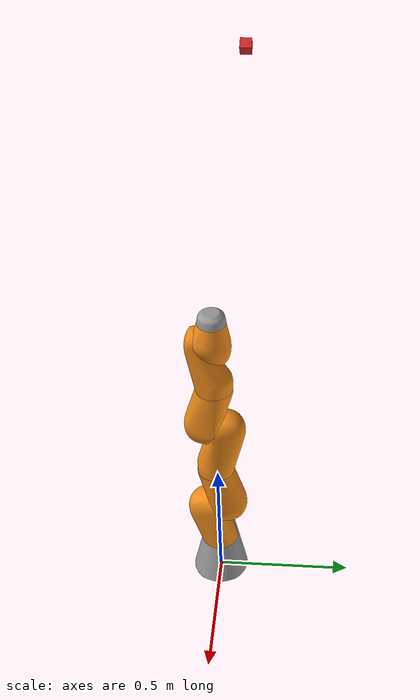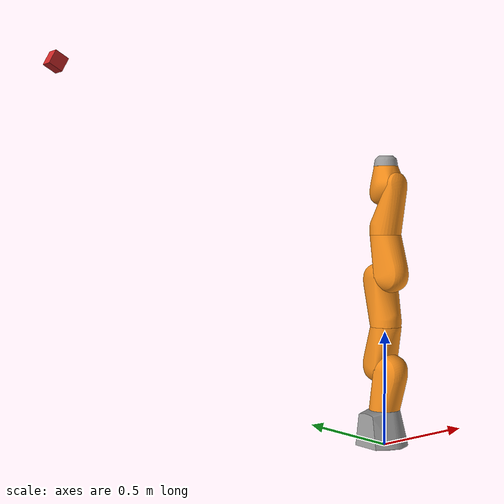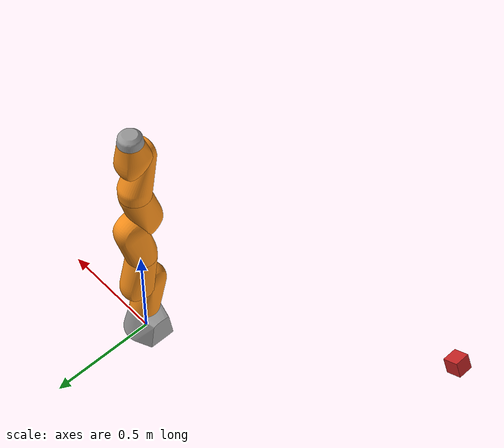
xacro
<?xml version="1.0"?>
<robot name="iiwa7" xmlns:xacro="http://www.ros.org/wiki/xacro">
  <!-- Import Rviz colors -->
  <xacro:include filename="$(find iiwa_description)/urdf/materials.xacro" />
  <!--Import the lbr iiwa macro -->
  <xacro:include filename="$(find iiwa_description)/urdf/iiwa7_cvx.xacro"/>

  <xacro:arg name="hardware_interface" default="PositionJointInterface"/>
  <xacro:arg name="robot_name" default="iiwa"/>

  <!-- Fix to world just for testing -->
  <link name="world"/>

  <!--iiwa-->
  <xacro:iiwa7 hardware_interface="$(arg hardware_interface)" robot_name="$(arg robot_name)" parent="world">
    <origin xyz="0 0 0.0" rpy="0 0 0" />
  </xacro:iiwa7>

</robot>

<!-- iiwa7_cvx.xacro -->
<robot xmlns:xacro="http://www.ros.org/wiki/xacro">

  <!-- Import all Gazebo-customization elements, including Gazebo colors -->
  <xacro:include filename="$(find iiwa_description)/urdf/iiwa.gazebo.xacro" />
  <!-- Import Transmissions -->
  <xacro:include filename="$(find iiwa_description)/urdf/iiwa.transmission.xacro" />
  <!-- Include Utilities -->
  <xacro:include filename="$(find iiwa_description)/urdf/utilities.xacro" />

  <!-- some constants -->
  <xacro:property name="safety_controller_k_pos" value="100" />
  <xacro:property name="safety_controller_k_vel" value="2" />
  <xacro:property name="joint_damping" value="0.5" />
  <xacro:property name="max_effort" value="300"/>
  <xacro:property name="max_velocity" value="10"/>

  <xacro:macro name="iiwa7" params="parent hardware_interface robot_name *origin">

    <!--joint between {parent} and link_0-->
    <joint name="${parent}_${robot_name}_joint" type="fixed">
      <xacro:insert_block name="origin"/>
      <parent link="${parent}"/>
      <child link="${robot_name}_link_0"/>
    </joint>

    <link name="${robot_name}_link_0">
      <inertial>
	<origin xyz="-0.1 0 0.07" rpy="0 0 0"/>
	<mass value="5"/>
	<inertia ixx="0.05"  ixy="0"  ixz="0" iyy="0.06" iyz="0" izz="0.03" />
      </inertial>

      <visual>
	<origin xyz="0 0 0" rpy="0 0 0"/>
	<geometry>
	  <mesh filename="package://iiwa_description/meshes/iiwa7/visual/link_0.stl"/>
	</geometry>
	<material name="Grey"/>
      </visual>

      <collision>
	<origin xyz="0 0 0" rpy="0 0 0"/>
	<geometry>
	  <mesh filename="package://iiwa_description/meshes/iiwa7/collision/link_0_cvx.stl"/>
	</geometry>
	<material name="Grey"/>
      </collision>

      <self_collision_checking>
	<origin xyz="0 0 0" rpy="0 0 0"/>
	<geometry>
	  <capsule radius="0.15" length="0.25"/>
	</geometry>
      </self_collision_checking>

    </link>

    <!-- joint between link_0 and link_1 -->
    <joint name="${robot_name}_joint_1" type="revolute">
      <parent link="${robot_name}_link_0"/>
      <child link="${robot_name}_link_1"/>
      <origin xyz="0 0 0.15" rpy="0 0 0"/>
      <axis xyz="0 0 1"/>
      <limit lower="${-170 * PI / 180}" upper="${170 * PI / 180}"
	     effort="${max_effort}" velocity="${max_velocity}" />
      <safety_controller soft_lower_limit="${-168 * PI / 180}"
			 soft_upper_limit="${168 * PI / 180}"
			 k_position="${safety_controller_k_pos}"
			 k_velocity="${safety_controller_k_vel}"/>
      <dynamics damping="${joint_damping}"/>
    </joint>

    <link name="${robot_name}_link_1">
      <inertial>
	<origin xyz="0 -0.03 0.12" rpy="0 0 0"/>
	<mass value="4"/>
	<inertia ixx="0.1"  ixy="0"  ixz="0" iyy="0.09" iyz="0" izz="0.02" />
      </inertial>
      <visual>
	<origin xyz="0 0 0.0075" rpy="0 0 0"/>
	<geometry>
	  <mesh filename="package://iiwa_description/meshes/iiwa7/visual/link_1.stl"/>
	</geometry>
	<material name="Orange"/>
      </visual>
      <collision>
	<origin xyz="0 0 0.0075" rpy="0 0 0"/>
	<geometry>
	  <mesh filename="package://iiwa_description/meshes/iiwa7/collision/link_1_cvx.stl"/>
	</geometry>
	<material name="Orange"/>
      </collision>
    </link>

    <joint name="${robot_name}_joint_2" type="revolute">
      <parent link="${robot_name}_link_1"/>
      <child link="${robot_name}_link_2"/>
      <origin xyz="0 0 0.19" rpy="${PI / 2}   0 ${PI}"/>
      <axis xyz="0 0 1"/>
      <limit lower="${-120 * PI / 180}" upper="${120 * PI / 180}"
	     effort="${max_effort}" velocity="${max_velocity}" />
      <safety_controller soft_lower_limit="${-118 * PI / 180}"
			 soft_upper_limit="${118 * PI / 180}"
			 k_position="${safety_controller_k_pos}"
			 k_velocity="${safety_controller_k_vel}"/>
      <dynamics damping="${joint_damping}"/>
    </joint>

    <link name="${robot_name}_link_2">
      <inertial>
	<origin xyz="0.0003 0.059 0.042" rpy="0 0 0"/>
	<mass value="4"/>
	<inertia ixx="0.05"  ixy="0"  ixz="0" iyy="0.018" iyz="0" izz="0.044" />
      </inertial>
      <visual>
	<origin xyz="0 0 -0.0060" rpy="0 0 0"/>
	<geometry>
	  <mesh filename="package://iiwa_description/meshes/iiwa7/visual/link_2.stl"/>
	</geometry>
	<material name="Orange"/>
      </visual>

      <collision>
	<origin xyz="0 0 -0.0060" rpy="0 0 0"/>
	<geometry>
	  <mesh filename="package://iiwa_description/meshes/iiwa7/collision/link_2_cvx.stl"/>
	</geometry>
	<material name="Orange"/>
      </collision>
    </link>

    <joint name="${robot_name}_joint_3" type="revolute">
      <parent link="${robot_name}_link_2"/>
      <child link="${robot_name}_link_3"/>
      <origin xyz="0 0.21 0" rpy="${PI / 2} 0 ${PI}"/>
      <axis xyz="0 0 1"/>
      <limit lower="${-170 * PI / 180}" upper="${170 * PI / 180}"
	     effort="${max_effort}" velocity="${max_velocity}" />
      <safety_controller soft_lower_limit="${-168 * PI / 180}"
			 soft_upper_limit="${168 * PI / 180}"
			 k_position="${safety_controller_k_pos}"
			 k_velocity="${safety_controller_k_vel}"/>
      <dynamics damping="${joint_damping}"/>
    </joint>

    <link name="${robot_name}_link_3">
      <inertial>
	<origin xyz="0 0.03 0.13" rpy="0 0 0"/>
	<mass value="3"/>
	<inertia ixx="0.08"  ixy="0"  ixz="0" iyy="0.075" iyz="0" izz="0.01" />
      </inertial>

      <visual>
	<origin xyz="0 -0.005 -0.026" rpy="0 0 0"/>
	<geometry>
	  <mesh filename="package://iiwa_description/meshes/iiwa7/visual/link_3.stl"/>
	</geometry>
	<material name="Orange"/>
      </visual>

      <collision>
	<origin xyz="0 -0.005 -0.026" rpy="0 0 0"/>
	<geometry>
	  <mesh filename="package://iiwa_description/meshes/iiwa7/collision/link_3_cvx.stl"/>
	</geometry>
	<material name="Orange"/>
      </collision>

    </link>

    <joint name="${robot_name}_joint_4" type="revolute">
      <parent link="${robot_name}_link_3"/>
      <child link="${robot_name}_link_4"/>
      <origin xyz="0 0 0.19" rpy="${PI / 2} 0 0"/>
      <axis xyz="0 0 1"/>
      <limit lower="${-120 * PI / 180}" upper="${120 * PI / 180}"
	     effort="${max_effort}" velocity="${max_velocity}" />
      <safety_controller soft_lower_limit="${-118 * PI / 180}"
			 soft_upper_limit="${118 * PI / 180}"
			 k_position="${safety_controller_k_pos}"
			 k_velocity="${safety_controller_k_vel}"/>
      <dynamics damping="${joint_damping}"/>
    </joint>

    <link name="${robot_name}_link_4">
      <inertial>
	<origin xyz="0 0.067 0.034" rpy="0 0 0"/>
	<mass value="2.7"/>
	<inertia ixx="0.03"  ixy="0"  ixz="0" iyy="0.01" iyz="0" izz="0.029" />
      </inertial>

      <visual>
	<origin xyz="0 0 0" rpy="0 0 0"/>
	<geometry>
	  <mesh filename="package://iiwa_description/meshes/iiwa7/visual/link_4.stl"/>
	</geometry>
	<material name="Orange"/>
      </visual>

      <collision>
	<origin xyz="0 0 0" rpy="0 0 0"/>
	<geometry>
	  <mesh filename="package://iiwa_description/meshes/iiwa7/collision/link_4_cvx.stl"/>
	</geometry>
	<material name="Orange"/>
      </collision>
    </link>

    <joint name="${robot_name}_joint_5" type="revolute">
      <parent link="${robot_name}_link_4"/>
      <child link="${robot_name}_link_5"/>
      <origin xyz="0 0.21 0" rpy="${-PI / 2} ${PI} 0"/>
      <axis xyz="0 0 1"/>
      <limit lower="${-170 * PI / 180}" upper="${170 * PI / 180}"
	     effort="${max_effort}" velocity="${max_velocity}" />
      <safety_controller soft_lower_limit="${-168 * PI / 180}"
			 soft_upper_limit="${168 * PI / 180}"
			 k_position="${safety_controller_k_pos}"
			 k_velocity="${safety_controller_k_vel}"/>
      <dynamics damping="${joint_damping}"/>
    </joint>

    <link name="${robot_name}_link_5">
      <inertial>
	<origin xyz="0.0001 0.021 0.076" rpy="0 0 0"/>
	<mass value="1.7"/>
	<inertia ixx="0.02"  ixy="0"  ixz="0" iyy="0.018" iyz="0" izz="0.005" />
      </inertial>

      <visual>
	<origin xyz="0 0 -0.026" rpy="0 0 0"/>
	<geometry>
	  <mesh filename="package://iiwa_description/meshes/iiwa7/visual/link_5.stl"/>
	</geometry>
	<material name="Orange"/>
      </visual>

      <collision>
	<origin xyz="0 0 -0.026" rpy="0 0 0"/>
	<geometry>
	  <mesh filename="package://iiwa_description/meshes/iiwa7/collision/link_5_cvx.stl"/>
	</geometry>
	<material name="Orange"/>
      </collision>
    </link>

    <joint name="${robot_name}_joint_6" type="revolute">
      <parent link="${robot_name}_link_5"/>
      <child link="${robot_name}_link_6"/>
      <origin xyz="0 0.06070 0.19" rpy="${PI / 2} 0 0"/>
      <axis xyz="0 0 1"/>
      <limit lower="${-120 * PI / 180}" upper="${120 * PI / 180}"
	     effort="${max_effort}" velocity="${max_velocity}" />
      <safety_controller soft_lower_limit="${-118 * PI / 180}"
			 soft_upper_limit="${118 * PI / 180}"
			 k_position="${safety_controller_k_pos}"
			 k_velocity="${safety_controller_k_vel}"/>
      <dynamics damping="${joint_damping}"/>
    </joint>

    <link name="${robot_name}_link_6">
      <inertial>
	<origin xyz="0 0.0006 0.0004" rpy="0 0 0"/>
	<mass value="1.8"/>
	<inertia ixx="0.005"  ixy="0"  ixz="0" iyy="0.0036" iyz="0" izz="0.0047" />
      </inertial>

      <visual>
	<origin xyz="0 0 0" rpy="0 0 0"/>
	<geometry>
	  <mesh filename="package://iiwa_description/meshes/iiwa7/visual/link_6.stl"/>
	</geometry>
	<material name="Orange"/>
      </visual>

      <collision>
	<origin xyz="0 0 0" rpy="0 0 0"/>
	<geometry>
	  <mesh filename="package://iiwa_description/meshes/iiwa7/collision/link_6_cvx.stl"/>
	</geometry>
	<material name="Orange"/>
      </collision>
    </link>

    <joint name="${robot_name}_joint_7" type="revolute">
      <parent link="${robot_name}_link_6"/>
      <child link="${robot_name}_link_7"/>
      <origin xyz="0 0.081 0.06070" rpy="${- PI / 2} ${PI} 0"/>
      <axis xyz="0 0 1"/>
      <limit lower="${-175 * PI / 180}" upper="${175 * PI / 180}"
	     effort="${max_effort}" velocity="${max_velocity}" />
      <safety_controller soft_lower_limit="${-173 * PI / 180}"
			 soft_upper_limit="${173 * PI / 180}"
			 k_position="${safety_controller_k_pos}"
			 k_velocity="${safety_controller_k_vel}"/>
      <dynamics damping="${joint_damping}"/>
    </joint>

    <link name="${robot_name}_link_7">
      <inertial>
	<origin xyz="0 0 0.02" rpy="0 0 0"/>
	<mass value="0.3"/>
	<inertia ixx="0.001"  ixy="0"  ixz="0" iyy="0.001" iyz="0" izz="0.001" />
      </inertial>

      <visual>
	<origin xyz="0 0 -0.0005" rpy="0 0 0"/>
	<geometry>
	  <mesh filename="package://iiwa_description/meshes/iiwa7/visual/link_7_basic.stl"/>
	</geometry>
	<material name="Grey"/>
      </visual>

      <collision>
	<origin xyz="0 0 -0.0005" rpy="0 0 0"/>
	<geometry>
	  <mesh filename="package://iiwa_description/meshes/iiwa7/collision/link_7_basic_cvx.stl"/>
	</geometry>
	<material name="Grey"/>
      </collision>
    </link>

    <joint name="${robot_name}_joint_ee" type="fixed">
      <parent link="${robot_name}_link_7"/>
      <child link="${robot_name}_link_ee"/>
      <origin xyz="0 0 0.045" rpy="0 -${PI/2} 0"/>
    </joint>

    <link name="${robot_name}_link_ee">
    </link>

    <joint name="${robot_name}_joint_ee_kuka" type="fixed">
      <parent link="${robot_name}_link_7"/>
      <child link="${robot_name}_link_ee_kuka"/>
      <origin xyz="0 0 0.045" rpy="${PI} ${PI} ${PI}"/>
      <axis xyz="0 0 1"/>
    </joint>

    <link name="${robot_name}_link_ee_kuka">
    </link>

    <!--Extensions -->
    <xacro:iiwa_gazebo robot_name="${robot_name}" />
    <xacro:iiwa_transmission hardware_interface="${hardware_interface}"/>

  </xacro:macro>

</robot>

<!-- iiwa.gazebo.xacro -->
<robot xmlns:xacro="http://www.ros.org/wiki/xacro">
  <xacro:property name="camera_link_size" value="0.05" /> <!-- Size of square 'camera' box -->
  <xacro:property name="PI" value="3.1415" />
  <xacro:macro name="iiwa_gazebo" params="robot_name">

    <!-- Load Gazebo lib and set the robot namespace -->
    <gazebo>
      <plugin name="gazebo_ros_control" filename="libgazebo_ros_control.so">
        <robotNamespace>/${robot_name}</robotNamespace>
      </plugin>
    </gazebo>

    <!-- Depth Camera -->
    <joint name="camera_joint" type="fixed">
      <origin xyz="-1.5 0 1.5" rpy="0 0.5 0"/>
      <parent link="world"/>
      <child link="camera_link"/>
    </joint>

    <link name="camera_link">
      <collision>
        <origin xyz="0 0 0" rpy="0 0 0"/>
        <geometry>
      <box size="${camera_link_size} ${camera_link_size} ${camera_link_size}"/>
        </geometry>
      </collision>

      <visual>
        <origin xyz="0 0 0" rpy="0 0 0"/>
        <geometry>
      <box size="${camera_link_size} ${camera_link_size} ${camera_link_size}"/>
        </geometry>
        <material name="red"/>
      </visual>

      <inertial>
        <mass value="1e-5" />
        <origin xyz="0 0 0" rpy="0 0 0"/>
        <inertia ixx="1e-6" ixy="0" ixz="0" iyy="1e-6" iyz="0" izz="1e-6" />
      </inertial>
    </link>

    <!-- Depth Camera -->
    <joint name="camera_joint_frame" type="fixed">
      <origin xyz="0 0 0" rpy="${-PI/2} 0 ${-PI/2}"/>
      <parent link="camera_link"/>
      <child link="camera_link_frame"/>
    </joint>

    <link name="camera_link_frame">
    </link>

    <gazebo reference="camera_link">
      <sensor type="depth" name="camera">
        <always_on>true</always_on>
        <update_rate>2.0</update_rate>
        <camera>
          <horizontal_fov>2.0</horizontal_fov>
          <image>
            <format>R8G8B8</format>
            <width>640</width>
            <height>480</height>
          </image>
          <clip>
            <near>0.05</near>
            <far>3</far>
          </clip>
        </camera>
        <plugin name="kinect_camera_controller" filename="libgazebo_ros_openni_kinect.so">
          <cameraName>camera</cameraName>
          <alwaysOn>true</alwaysOn>
          <updateRate>2</updateRate>
          <imageTopicName>rgb/image_raw</imageTopicName>
          <depthImageTopicName>depth/image_raw</depthImageTopicName>
          <pointCloudTopicName>depth/points</pointCloudTopicName>
          <cameraInfoTopicName>rgb/camera_info</cameraInfoTopicName>
          <depthImageCameraInfoTopicName>depth/camera_info</depthImageCameraInfoTopicName>
          <frameName>camera_link_frame</frameName>
          <baseline>0.1</baseline>
          <distortion_k1>0.0</distortion_k1>
          <distortion_k2>0.0</distortion_k2>
          <distortion_k3>0.0</distortion_k3>
          <distortion_t1>0.0</distortion_t1>
          <distortion_t2>0.0</distortion_t2>
          <pointCloudCutoff>0.4</pointCloudCutoff>
        </plugin>
      </sensor>
    </gazebo>

    <!-- Link0 -->
    <gazebo reference="iiwa_link_0">
      <material>Gazebo/Grey</material>
      <mu1>0.2</mu1>
      <mu2>0.2</mu2>
    </gazebo>

    <!-- Link1 -->
    <gazebo reference="iiwa_link_1">
      <material>Gazebo/Orange</material>
      <mu1>0.2</mu1>
      <mu2>0.2</mu2>
    </gazebo>

    <!-- Link2 -->
    <gazebo reference="iiwa_link_2">
      <material>Gazebo/Orange</material>
      <mu1>0.2</mu1>
      <mu2>0.2</mu2>
    </gazebo>

    <!-- Link3 -->
    <gazebo reference="iiwa_link_3">
      <material>Gazebo/Orange</material>
      <mu1>0.2</mu1>
      <mu2>0.2</mu2>
    </gazebo>

    <!-- Link4 -->
    <gazebo reference="iiwa_link_4">
      <material>Gazebo/Orange</material>
      <mu1>0.2</mu1>
      <mu2>0.2</mu2>
    </gazebo>

    <!-- Link5 -->
    <gazebo reference="iiwa_link_5">
      <material>Gazebo/Orange</material>
      <mu1>0.2</mu1>
      <mu2>0.2</mu2>
    </gazebo>

    <!-- Link6 -->
    <gazebo reference="iiwa_link_6">
      <material>Gazebo/Orange</material>
      <mu1>0.2</mu1>
      <mu2>0.2</mu2>
    </gazebo>

    <!-- Link7 -->
    <gazebo reference="iiwa_link_7">
      <material>Gazebo/Grey</material>
      <mu1>0.2</mu1>
      <mu2>0.2</mu2>
    </gazebo>

  </xacro:macro>
</robot>
